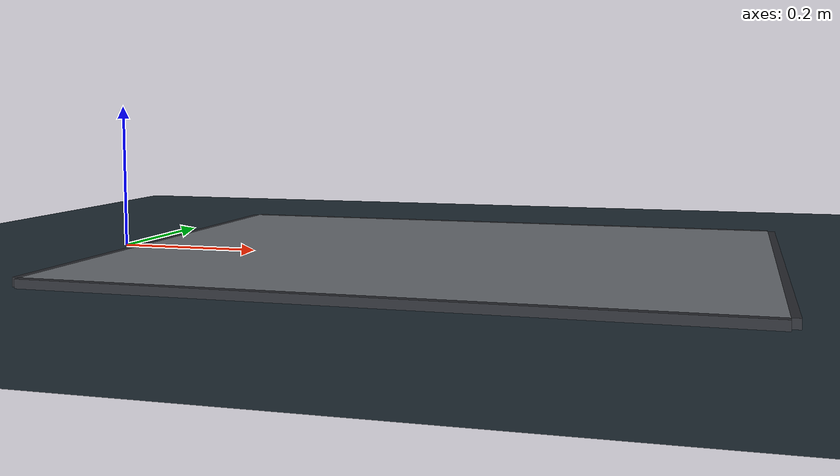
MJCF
<mujoco model="custom_panda_grasp_arena">
  <visual>
    <quality shadowsize="0"/>
    <map shadowscale="0"/>
  </visual>

  <asset>
    <texture type="skybox" builtin="gradient" rgb1="0.32 0.48 0.62" rgb2="0.02 0.05 0.08" width="512" height="3072"/>
    <texture type="2d" name="floor_grid" builtin="checker" mark="edge"
      rgb1="0.18 0.24 0.28" rgb2="0.10 0.15 0.18" markrgb="0.65 0.72 0.76"
      width="300" height="300"/>
    <material name="floor_grid" texture="floor_grid" texuniform="true" texrepeat="7 7" reflectance="0"/>
    <material name="workspace_mat" rgba="0.46 0.48 0.50 1" reflectance="0"/>
    <material name="workspace_edge_mat" rgba="0.18 0.19 0.21 1" reflectance="0"/>
  </asset>

  <worldbody>
    <geom name="floor" type="plane" size="3 3 0.05" material="floor_grid" group="1"/>

    <light name="key_light" pos="0.2 -0.6 1.8" dir="-0.2 0.5 -1" directional="true" castshadow="false"
      diffuse="0.8 0.8 0.75" specular="0.2 0.2 0.2"/>
    <light name="fill_light" pos="-0.8 0.8 1.0" dir="0.6 -0.5 -0.8" directional="true" castshadow="false"
      diffuse="0.25 0.3 0.35" specular="0.05 0.05 0.05"/>

    <body name="workspace" pos="0.48 0 0.005">
      <geom name="workspace_top" type="box" size="0.42 0.32 0.005" material="workspace_mat"
        friction="1.2 0.03 0.003" group="1"/>
      <geom name="workspace_front_edge" type="box" pos="0 -0.325 -0.01" size="0.42 0.005 0.015"
        material="workspace_edge_mat" contype="0" conaffinity="0" group="1"/>
      <geom name="workspace_back_edge" type="box" pos="0 0.325 -0.01" size="0.42 0.005 0.015"
        material="workspace_edge_mat" contype="0" conaffinity="0" group="1"/>
      <geom name="workspace_left_edge" type="box" pos="-0.425 0 -0.01" size="0.005 0.32 0.015"
        material="workspace_edge_mat" contype="0" conaffinity="0" group="1"/>
      <geom name="workspace_right_edge" type="box" pos="0.425 0 -0.01" size="0.005 0.32 0.015"
        material="workspace_edge_mat" contype="0" conaffinity="0" group="1"/>
    </body>

    <camera mode="fixed" name="frontview" pos="1.15 -1.05 0.85" quat="0.56 0.43 0.43 0.56"/>
    <camera mode="fixed" name="agentview" pos="0.95 -0.75 0.7" quat="0.56 0.43 0.43 0.56"/>
    <camera mode="fixed" name="birdview" pos="0.48 0 1.8" quat="0.7071 0 0 0.7071"/>
  </worldbody>
</mujoco>
